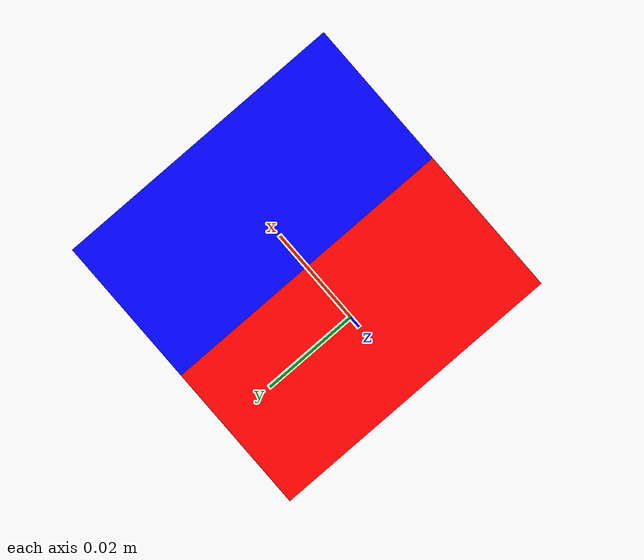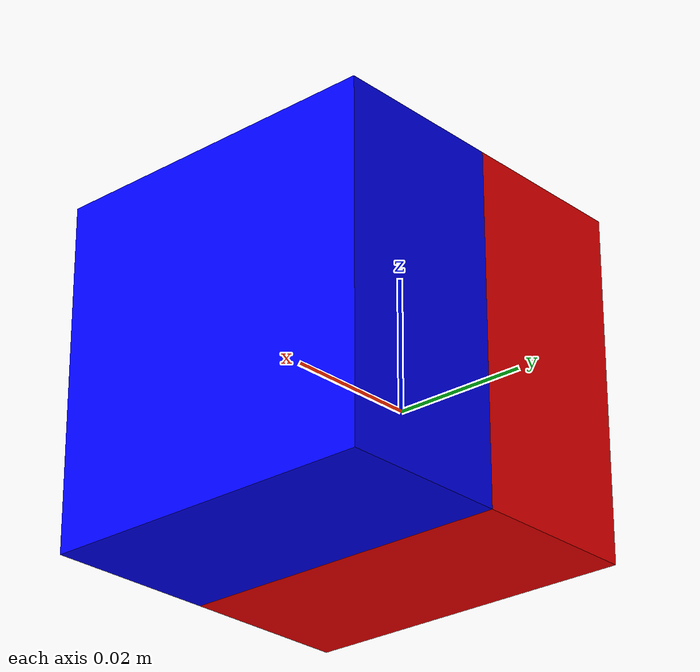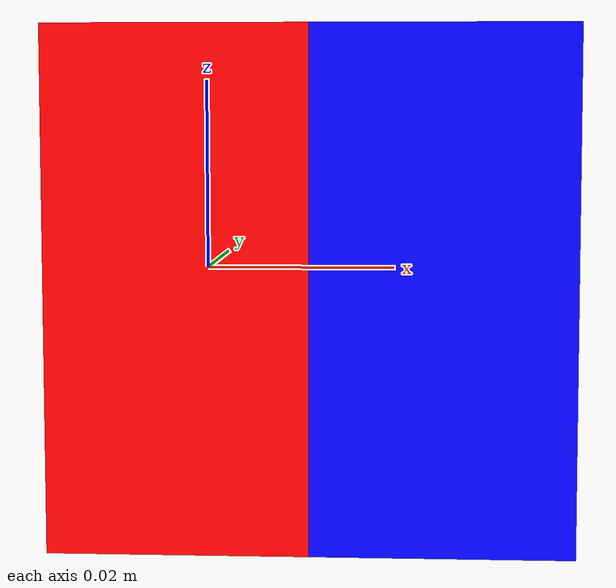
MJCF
<mujoco>
    <compiler angle="radian"/>
    <default>
        <geom friction="1 0.1 0.1"/>
        <general ctrllimited="true" forcelimited="true"></general>
        <joint limited="true" damping="0.1" armature="0.001" margin="0.01" frictionloss="0.001"></joint>
    </default>
    <worldbody>
        <!-- 第一个方块 -->
        <body name="box1" pos="0 0 0">
            <geom type="box" size="0.0125 0.025 0.025" rgba="1 0 0 1"/>
            <inertial pos="0 0 0" mass="0.1" diaginertia="0.01 0.01 0.01"/>
            <!-- 第二个方块 -->
            <body name="box2" pos="0.025 0.0 0">
                <joint name="rotate_joint" type="hinge" axis="1 0 0" pos="0.025 0 0" damping="0.1" range="-100 100" armature="0.005"/>
                <geom type="box" size="0.0125 0.025 0.025" rgba="0 0 1 1"/>
                <inertial pos="0 0 0" mass="0.1" diaginertia="0.01 0.01 0.01"/>
            </body>
        </body>
    </worldbody>

    <contact>
        <exclude body1="box1" body2="box2"/>
    </contact>

    <actuator>
        <motor joint="rotate_joint" ctrllimited="true" ctrlrange="-10 10" forcerange="-10 10"/>
    </actuator>
</mujoco>
